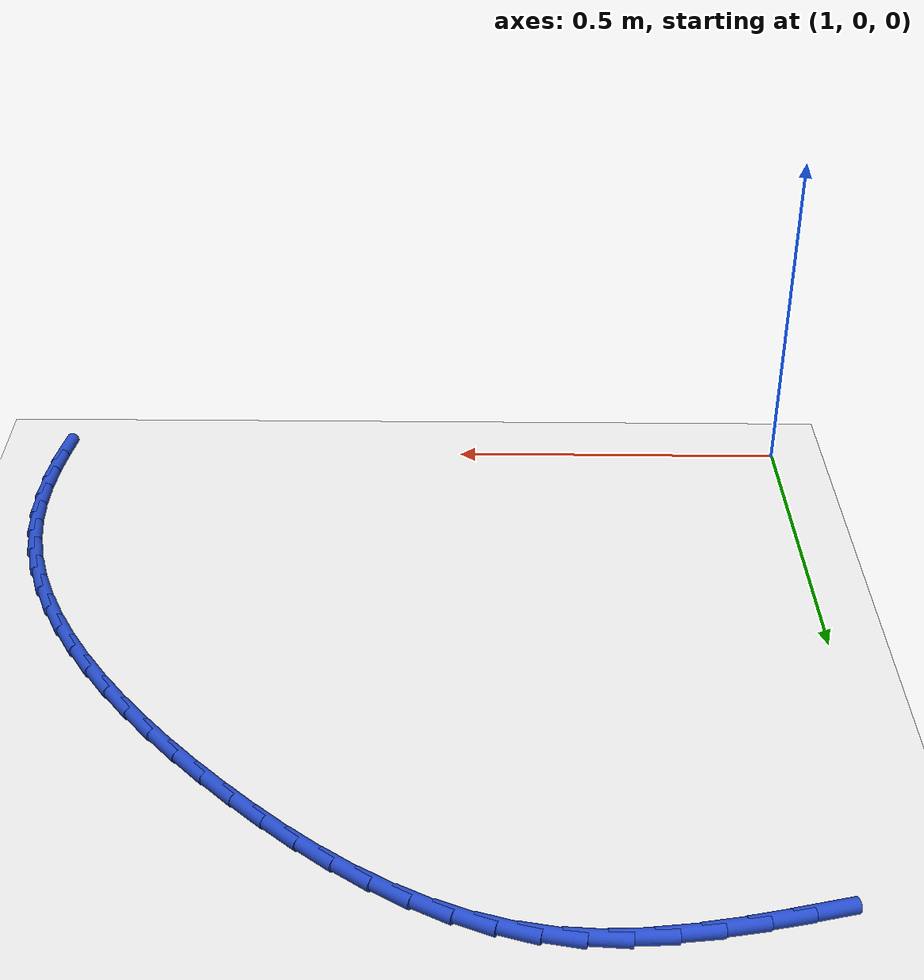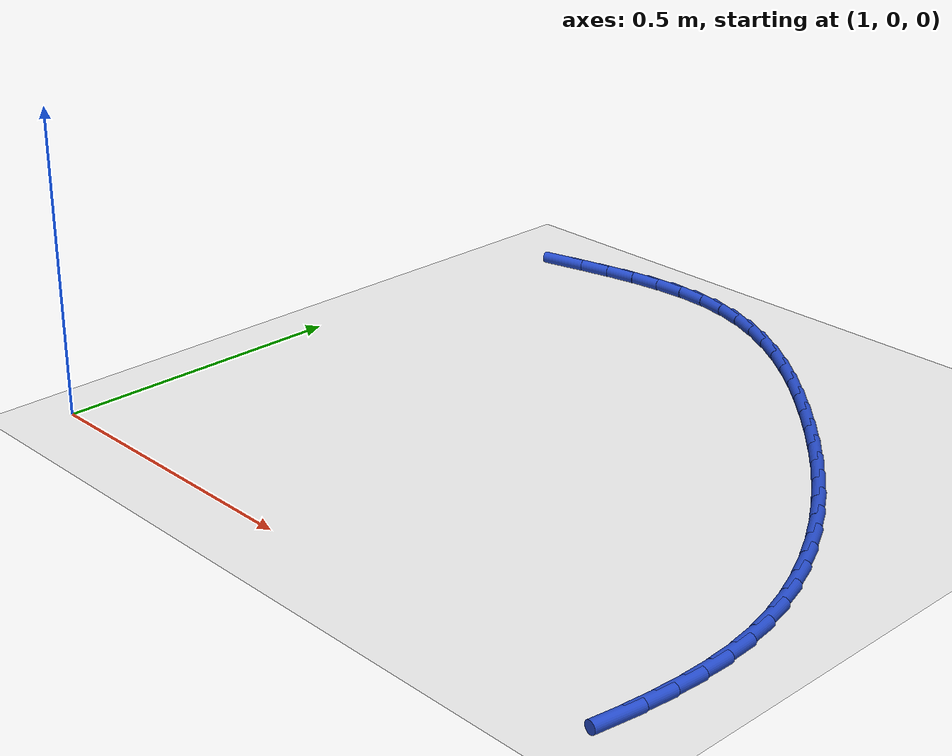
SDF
<sdf version="1.6">
 <world name="default">
  <model name="ground_plane">
   <static>1</static>
   <link name="link">
    <collision name="collision">
     <geometry><plane><normal>0 0 1</normal><size>100 100</size></plane></geometry>
     <surface><friction><ode><mu>100</mu><mu2>50</mu2></ode></friction></surface>
    </collision>
    <visual name="visual">
     <cast_shadows>0</cast_shadows>
     <geometry><plane><normal>0 0 1</normal><size>100 100</size></plane></geometry>
     <material>
      <script><uri>file://media/materials/scripts/gazebo.material</uri><name>Gazebo/WhiteGlow</name></script>
     </material>
    </visual>
   </link>
  </model>
  <model name="line">
   <link name="link_31">
    <pose>1.0975625611220048 1.0117997284763205 0.01 0 1.57 0.25062899688761325</pose>
    <collision name="collision">
     <geometry><cylinder><radius>0.01</radius><length>0.08</length></cylinder></geometry>
    </collision>
    <visual name="visual">
     <material>
      <script><name>Gazebo/Blue</name><uri>file://media/materials/scripts/gazebo.material</uri></script>
     </material>
     <geometry><cylinder><radius>0.01</radius><length>0.08</length></cylinder></geometry>
    </visual>
   </link>
   <link name="link_32">
    <pose>1.1499308362862701 1.0252066372283895 0.01 0 1.57 0.22672886647573887</pose>
    <collision name="collision">
     <geometry><cylinder><radius>0.01</radius><length>0.08</length></cylinder></geometry>
    </collision>
    <visual name="visual">
     <material>
      <script><name>Gazebo/Blue</name><uri>file://media/materials/scripts/gazebo.material</uri></script>
     </material>
     <geometry><cylinder><radius>0.01</radius><length>0.08</length></cylinder></geometry>
    </visual>
   </link>
   <link name="link_33">
    <pose>1.2024263395364243 1.0373171148347937 0.01 0 1.57 0.1848157012243017</pose>
    <collision name="collision">
     <geometry><cylinder><radius>0.01</radius><length>0.08</length></cylinder></geometry>
    </collision>
    <visual name="visual">
     <material>
      <script><name>Gazebo/Blue</name><uri>file://media/materials/scripts/gazebo.material</uri></script>
     </material>
     <geometry><cylinder><radius>0.01</radius><length>0.08</length></cylinder></geometry>
    </visual>
   </link>
   <link name="link_34">
    <pose>1.2547926469056863 1.0471069485684883 0.01 0 1.57 0.12335835755553305</pose>
    <collision name="collision">
     <geometry><cylinder><radius>0.01</radius><length>0.08</length></cylinder></geometry>
    </collision>
    <visual name="visual">
     <material>
      <script><name>Gazebo/Blue</name><uri>file://media/materials/scripts/gazebo.material</uri></script>
     </material>
     <geometry><cylinder><radius>0.01</radius><length>0.08</length></cylinder></geometry>
    </visual>
   </link>
   <link name="link_35">
    <pose>1.3067733344272736 1.0535519257024273 0.01 0 1.57 0.04041356318014025</pose>
    <collision name="collision">
     <geometry><cylinder><radius>0.01</radius><length>0.08</length></cylinder></geometry>
    </collision>
    <visual name="visual">
     <material>
      <script><name>Gazebo/Blue</name><uri>file://media/materials/scripts/gazebo.material</uri></script>
     </material>
     <geometry><cylinder><radius>0.01</radius><length>0.08</length></cylinder></geometry>
    </visual>
   </link>
   <link name="link_36">
    <pose>1.358111978134405 1.0556278335095657 0.01 0 1.57 -0.06567390907481492</pose>
    <collision name="collision">
     <geometry><cylinder><radius>0.01</radius><length>0.08</length></cylinder></geometry>
    </collision>
    <visual name="visual">
     <material>
      <script><name>Gazebo/Blue</name><uri>file://media/materials/scripts/gazebo.material</uri></script>
     </material>
     <geometry><cylinder><radius>0.01</radius><length>0.08</length></cylinder></geometry>
    </visual>
   </link>
   <link name="link_37">
    <pose>1.4085521540602999 1.0523104592628583 0.01 0 1.57 -0.19044796045904028</pose>
    <collision name="collision">
     <geometry><cylinder><radius>0.01</radius><length>0.08</length></cylinder></geometry>
    </collision>
    <visual name="visual">
     <material>
      <script><name>Gazebo/Blue</name><uri>file://media/materials/scripts/gazebo.material</uri></script>
     </material>
     <geometry><cylinder><radius>0.01</radius><length>0.08</length></cylinder></geometry>
    </visual>
   </link>
   <link name="link_38">
    <pose>1.457873606902952 1.0428020522367076 0.01 0 1.57 -0.3095891160759406</pose>
    <collision name="collision">
     <geometry><cylinder><radius>0.01</radius><length>0.08</length></cylinder></geometry>
    </collision>
    <visual name="visual">
     <material>
      <script><name>Gazebo/Blue</name><uri>file://media/materials/scripts/gazebo.material</uri></script>
     </material>
     <geometry><cylinder><radius>0.01</radius><length>0.08</length></cylinder></geometry>
    </visual>
   </link>
   <link name="link_39">
    <pose>1.5060306434672075 1.0273978432777908 0.01 0 1.57 -0.4144299054228537</pose>
    <collision name="collision">
     <geometry><cylinder><radius>0.01</radius><length>0.08</length></cylinder></geometry>
    </collision>
    <visual name="visual">
     <material>
      <script><name>Gazebo/Blue</name><uri>file://media/materials/scripts/gazebo.material</uri></script>
     </material>
     <geometry><cylinder><radius>0.01</radius><length>0.08</length></cylinder></geometry>
    </visual>
   </link>
   <link name="link_40">
    <pose>1.553030164993752 1.0067223715243456 0.01 0 1.57 -0.5046035003380418</pose>
    <collision name="collision">
     <geometry><cylinder><radius>0.01</radius><length>0.08</length></cylinder></geometry>
    </collision>
    <visual name="visual">
     <material>
      <script><name>Gazebo/Blue</name><uri>file://media/materials/scripts/gazebo.material</uri></script>
     </material>
     <geometry><cylinder><radius>0.01</radius><length>0.08</length></cylinder></geometry>
    </visual>
   </link>
   <link name="link_41">
    <pose>1.59887908341631 0.9814002430666768 0.01 0 1.57 -0.5808560010597689</pose>
    <collision name="collision">
     <geometry><cylinder><radius>0.01</radius><length>0.08</length></cylinder></geometry>
    </collision>
    <visual name="visual">
     <material>
      <script><name>Gazebo/Blue</name><uri>file://media/materials/scripts/gazebo.material</uri></script>
     </material>
     <geometry><cylinder><radius>0.01</radius><length>0.08</length></cylinder></geometry>
    </visual>
   </link>
   <link name="link_42">
    <pose>1.6435843106686074 0.9520560639950907 0.01 0 1.57 -0.644459463050273</pose>
    <collision name="collision">
     <geometry><cylinder><radius>0.01</radius><length>0.08</length></cylinder></geometry>
    </collision>
    <visual name="visual">
     <material>
      <script><name>Gazebo/Blue</name><uri>file://media/materials/scripts/gazebo.material</uri></script>
     </material>
     <geometry><cylinder><radius>0.01</radius><length>0.08</length></cylinder></geometry>
    </visual>
   </link>
   <link name="link_43">
    <pose>1.6871527586843673 0.919314440399892 0.01 0 1.57 -0.6968064378911921</pose>
    <collision name="collision">
     <geometry><cylinder><radius>0.01</radius><length>0.08</length></cylinder></geometry>
    </collision>
    <visual name="visual">
     <material>
      <script><name>Gazebo/Blue</name><uri>file://media/materials/scripts/gazebo.material</uri></script>
     </material>
     <geometry><cylinder><radius>0.01</radius><length>0.08</length></cylinder></geometry>
    </visual>
   </link>
   <link name="link_44">
    <pose>1.7295913393973161 0.8837999783713881 0.01 0 1.57 -0.7391787775445174</pose>
    <collision name="collision">
     <geometry><cylinder><radius>0.01</radius><length>0.08</length></cylinder></geometry>
    </collision>
    <visual name="visual">
     <material>
      <script><name>Gazebo/Blue</name><uri>file://media/materials/scripts/gazebo.material</uri></script>
     </material>
     <geometry><cylinder><radius>0.01</radius><length>0.08</length></cylinder></geometry>
    </visual>
   </link>
   <link name="link_45">
    <pose>1.7709069647411773 0.8461372839998831 0.01 0 1.57 -0.7726955634504303</pose>
    <collision name="collision">
     <geometry><cylinder><radius>0.01</radius><length>0.08</length></cylinder></geometry>
    </collision>
    <visual name="visual">
     <material>
      <script><name>Gazebo/Blue</name><uri>file://media/materials/scripts/gazebo.material</uri></script>
     </material>
     <geometry><cylinder><radius>0.01</radius><length>0.08</length></cylinder></geometry>
    </visual>
   </link>
   <link name="link_46">
    <pose>1.8111051455371818 0.806947589862195 0.01 0 1.57 -0.8018811608925095</pose>
    <collision name="collision">
     <geometry><cylinder><radius>0.01</radius><length>0.08</length></cylinder></geometry>
    </collision>
    <visual name="visual">
     <material>
      <script><name>Gazebo/Blue</name><uri>file://media/materials/scripts/gazebo.material</uri></script>
     </material>
     <geometry><cylinder><radius>0.01</radius><length>0.08</length></cylinder></geometry>
    </visual>
   </link>
   <link name="link_47">
    <pose>1.8501039194382887 0.7666415159581246 0.01 0 1.57 -0.833044845114679</pose>
    <collision name="collision">
     <geometry><cylinder><radius>0.01</radius><length>0.08</length></cylinder></geometry>
    </collision>
    <visual name="visual">
     <material>
      <script><name>Gazebo/Blue</name><uri>file://media/materials/scripts/gazebo.material</uri></script>
     </material>
     <geometry><cylinder><radius>0.01</radius><length>0.08</length></cylinder></geometry>
    </visual>
   </link>
   <link name="link_48">
    <pose>1.8876837448550094 0.7252984273510423 0.01 0 1.57 -0.8670030735951871</pose>
    <collision name="collision">
     <geometry><cylinder><radius>0.01</radius><length>0.08</length></cylinder></geometry>
    </collision>
    <visual name="visual">
     <material>
      <script><name>Gazebo/Blue</name><uri>file://media/materials/scripts/gazebo.material</uri></script>
     </material>
     <geometry><cylinder><radius>0.01</radius><length>0.08</length></cylinder></geometry>
    </visual>
   </link>
   <link name="link_49">
    <pose>1.9236130090439798 0.6829686249138248 0.01 0 1.57 -0.9040814660569698</pose>
    <collision name="collision">
     <geometry><cylinder><radius>0.01</radius><length>0.08</length></cylinder></geometry>
    </collision>
    <visual name="visual">
     <material>
      <script><name>Gazebo/Blue</name><uri>file://media/materials/scripts/gazebo.material</uri></script>
     </material>
     <geometry><cylinder><radius>0.01</radius><length>0.08</length></cylinder></geometry>
    </visual>
   </link>
   <link name="link_50">
    <pose>1.9576600992618343 0.6397024095193479 0.01 0 1.57 -0.9446341870052382</pose>
    <collision name="collision">
     <geometry><cylinder><radius>0.01</radius><length>0.08</length></cylinder></geometry>
    </collision>
    <visual name="visual">
     <material>
      <script><name>Gazebo/Blue</name><uri>file://media/materials/scripts/gazebo.material</uri></script>
     </material>
     <geometry><cylinder><radius>0.01</radius><length>0.08</length></cylinder></geometry>
    </visual>
   </link>
   <link name="link_51">
    <pose>1.9895934027652076 0.5955500820404881 0.01 0 1.57 -0.9890394638312145</pose>
    <collision name="collision">
     <geometry><cylinder><radius>0.01</radius><length>0.08</length></cylinder></geometry>
    </collision>
    <visual name="visual">
     <material>
      <script><name>Gazebo/Blue</name><uri>file://media/materials/scripts/gazebo.material</uri></script>
     </material>
     <geometry><cylinder><radius>0.01</radius><length>0.08</length></cylinder></geometry>
    </visual>
   </link>
   <link name="link_52">
    <pose>2.019181306810734 0.5505619433501225 0.01 0 1.57 -1.0376902848107428</pose>
    <collision name="collision">
     <geometry><cylinder><radius>0.01</radius><length>0.08</length></cylinder></geometry>
    </collision>
    <visual name="visual">
     <material>
      <script><name>Gazebo/Blue</name><uri>file://media/materials/scripts/gazebo.material</uri></script>
     </material>
     <geometry><cylinder><radius>0.01</radius><length>0.08</length></cylinder></geometry>
    </visual>
   </link>
   <link name="link_53">
    <pose>2.0461921986550484 0.5047882943211273 0.01 0 1.57 -1.0909781809288206</pose>
    <collision name="collision">
     <geometry><cylinder><radius>0.01</radius><length>0.08</length></cylinder></geometry>
    </collision>
    <visual name="visual">
     <material>
      <script><name>Gazebo/Blue</name><uri>file://media/materials/scripts/gazebo.material</uri></script>
     </material>
     <geometry><cylinder><radius>0.01</radius><length>0.08</length></cylinder></geometry>
    </visual>
   </link>
   <link name="link_54">
    <pose>2.0703944655547852 0.4582794358263781 0.01 0 1.57 -1.1492676886252238</pose>
    <collision name="collision">
     <geometry><cylinder><radius>0.01</radius><length>0.08</length></cylinder></geometry>
    </collision>
    <visual name="visual">
     <material>
      <script><name>Gazebo/Blue</name><uri>file://media/materials/scripts/gazebo.material</uri></script>
     </material>
     <geometry><cylinder><radius>0.01</radius><length>0.08</length></cylinder></geometry>
    </visual>
   </link>
   <link name="link_55">
    <pose>2.091556494766581 0.4110856687387522 0.01 0 1.57 -1.212859248432901</pose>
    <collision name="collision">
     <geometry><cylinder><radius>0.01</radius><length>0.08</length></cylinder></geometry>
    </collision>
    <visual name="visual">
     <material>
      <script><name>Gazebo/Blue</name><uri>file://media/materials/scripts/gazebo.material</uri></script>
     </material>
     <geometry><cylinder><radius>0.01</radius><length>0.08</length></cylinder></geometry>
    </visual>
   </link>
   <link name="link_56">
    <pose>2.1094466735470676 0.363257293931126 0.01 0 1.57 -1.2819394179818604</pose>
    <collision name="collision">
     <geometry><cylinder><radius>0.01</radius><length>0.08</length></cylinder></geometry>
    </collision>
    <visual name="visual">
     <material>
      <script><name>Gazebo/Blue</name><uri>file://media/materials/scripts/gazebo.material</uri></script>
     </material>
     <geometry><cylinder><radius>0.01</radius><length>0.08</length></cylinder></geometry>
    </visual>
   </link>
   <link name="link_57">
    <pose>2.1238333891528822 0.3148446122763759 0.01 0 1.57 -1.356519979307685</pose>
    <collision name="collision">
     <geometry><cylinder><radius>0.01</radius><length>0.08</length></cylinder></geometry>
    </collision>
    <visual name="visual">
     <material>
      <script><name>Gazebo/Blue</name><uri>file://media/materials/scripts/gazebo.material</uri></script>
     </material>
     <geometry><cylinder><radius>0.01</radius><length>0.08</length></cylinder></geometry>
    </visual>
   </link>
   <link name="link_58">
    <pose>2.1344850288406585 0.26589792464737777 0.01 0 1.57 -1.4360500906922509</pose>
    <collision name="collision">
     <geometry><cylinder><radius>0.01</radius><length>0.08</length></cylinder></geometry>
    </collision>
    <visual name="visual">
     <material>
      <script><name>Gazebo/Blue</name><uri>file://media/materials/scripts/gazebo.material</uri></script>
     </material>
     <geometry><cylinder><radius>0.01</radius><length>0.08</length></cylinder></geometry>
    </visual>
   </link>
   <link name="link_59">
    <pose>2.141186328789845 0.21646653811810912 0.01 0 1.57 -1.5132387500382194</pose>
    <collision name="collision">
     <geometry><cylinder><radius>0.01</radius><length>0.08</length></cylinder></geometry>
    </collision>
    <visual name="visual">
     <material>
      <script><name>Gazebo/Blue</name><uri>file://media/materials/scripts/gazebo.material</uri></script>
     </material>
     <geometry><cylinder><radius>0.01</radius><length>0.08</length></cylinder></geometry>
    </visual>
   </link>
   <link name="link_60">
    <pose>2.1440609004159956 0.1665791606172431 0.01 0 1.57 1.5606820979667673</pose>
    <collision name="collision">
     <geometry><cylinder><radius>0.01</radius><length>0.08</length></cylinder></geometry>
    </collision>
    <visual name="visual">
     <material>
      <script><name>Gazebo/Blue</name><uri>file://media/materials/scripts/gazebo.material</uri></script>
     </material>
     <geometry><cylinder><radius>0.01</radius><length>0.08</length></cylinder></geometry>
    </visual>
   </link>
   <link name="link_61">
    <pose>2.1435517926716128 0.11624508248391335 0.01 0 1.57 1.503199472845967</pose>
    <collision name="collision">
     <geometry><cylinder><radius>0.01</radius><length>0.08</length></cylinder></geometry>
    </collision>
    <visual name="visual">
     <material>
      <script><name>Gazebo/Blue</name><uri>file://media/materials/scripts/gazebo.material</uri></script>
     </material>
     <geometry><cylinder><radius>0.01</radius><length>0.08</length></cylinder></geometry>
    </visual>
   </link>
   <link name="link_62">
    <pose>2.140114511639393 0.06547283682802134 0.01 0 1.57 1.4558804220438792</pose>
    <collision name="collision">
     <geometry><cylinder><radius>0.01</radius><length>0.08</length></cylinder></geometry>
    </collision>
    <visual name="visual">
     <material>
      <script><name>Gazebo/Blue</name><uri>file://media/materials/scripts/gazebo.material</uri></script>
     </material>
     <geometry><cylinder><radius>0.01</radius><length>0.08</length></cylinder></geometry>
    </visual>
   </link>
   <link name="link_63">
    <pose>2.1342045634020326 0.014270956759469145 0.01 0 1.57 1.4184287368397361</pose>
    <collision name="collision">
     <geometry><cylinder><radius>0.01</radius><length>0.08</length></cylinder></geometry>
    </collision>
    <visual name="visual">
     <material>
      <script><name>Gazebo/Blue</name><uri>file://media/materials/scripts/gazebo.material</uri></script>
     </material>
     <geometry><cylinder><radius>0.01</radius><length>0.08</length></cylinder></geometry>
    </visual>
   </link>
  </model>
 </world>
</sdf>
